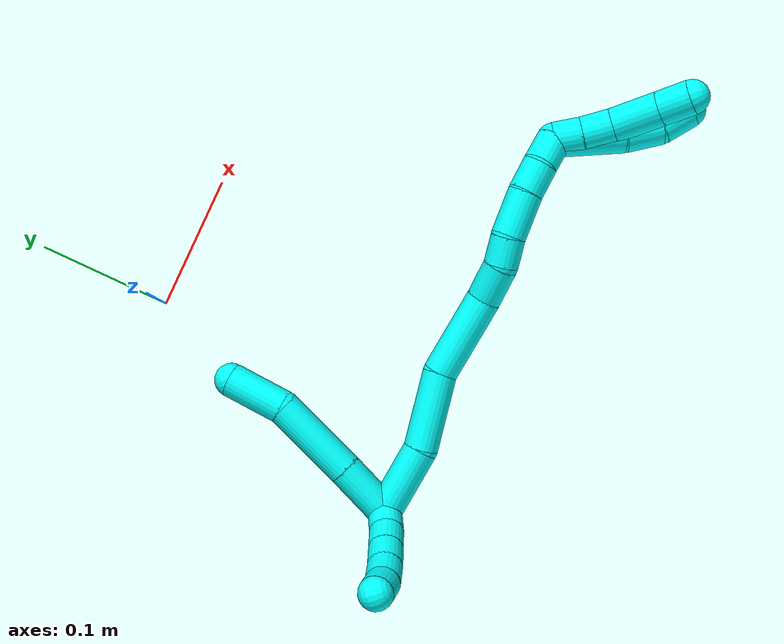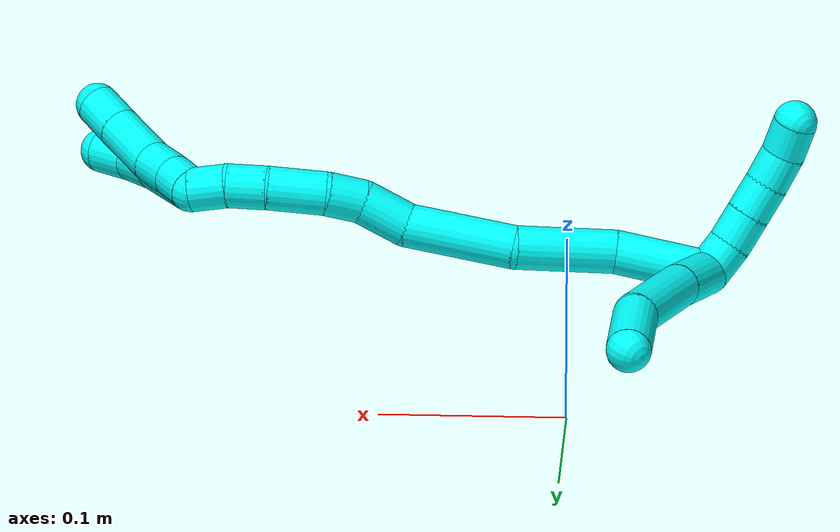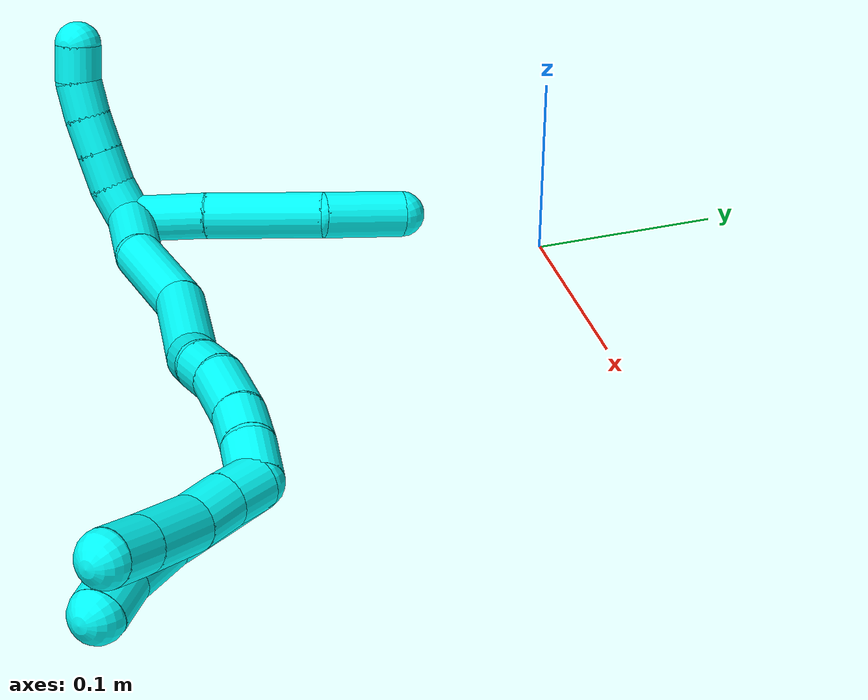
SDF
<sdf version="1.7">
 <world name="default">
  <model name="3">
   <static>0</static>
   <link name="3">
    <collision name="collision-cylinder-e_1_2_8">
     <pose>0.01212 0.015646 -0.008041 -2.04556 0.603287 -0.942823</pose>
     <geometry><cylinder><radius>0.0125</radius><length>0.042725</length></cylinder></geometry>
     <surface>
      <friction><ode><mu>1.16</mu><mu2>1.16</mu2><slip1>0</slip1><slip2>0</slip2></ode></friction>
      <contact><ode><kp>1e+06</kp><kd>1</kd><max_vel>0</max_vel><min_depth>0.001</min_depth></ode></contact>
     </surface>
    </collision>
    <visual name="visual-cylinder-e_1_2_8">
     <pose>0.01212 0.015646 -0.008041 -2.04556 0.603287 -0.942823</pose>
     <geometry><cylinder><radius>0.0125</radius><length>0.042725</length></cylinder></geometry>
     <material><ambient>0.003922 1 0.996078 1</ambient></material>
    </visual>
    <collision name="collision-cylinder-e_2_8_9">
     <pose>0.043127 0.053136 -0.02935 -2.11661 0.636431 -1.05935</pose>
     <geometry><cylinder><radius>0.0125</radius><length>0.063558</length></cylinder></geometry>
     <surface>
      <friction><ode><mu>1.16</mu><mu2>1.16</mu2><slip1>0</slip1><slip2>0</slip2></ode></friction>
      <contact><ode><kp>1e+06</kp><kd>1</kd><max_vel>0</max_vel><min_depth>0.001</min_depth></ode></contact>
     </surface>
    </collision>
    <visual name="visual-cylinder-e_2_8_9">
     <pose>0.043127 0.053136 -0.02935 -2.11661 0.636431 -1.05935</pose>
     <geometry><cylinder><radius>0.0125</radius><length>0.063558</length></cylinder></geometry>
     <material><ambient>0.003922 1 0.996078 1</ambient></material>
    </visual>
    <collision name="collision-cylinder-e_3_9_6">
     <pose>0.073513 0.085801 -0.057733 -2.52029 0.553948 -1.44948</pose>
     <geometry><cylinder><radius>0.0125</radius><length>0.043717</length></cylinder></geometry>
     <surface>
      <friction><ode><mu>1.16</mu><mu2>1.16</mu2><slip1>0</slip1><slip2>0</slip2></ode></friction>
      <contact><ode><kp>1e+06</kp><kd>1</kd><max_vel>0</max_vel><min_depth>0.001</min_depth></ode></contact>
     </surface>
    </collision>
    <visual name="visual-cylinder-e_3_9_6">
     <pose>0.073513 0.085801 -0.057733 -2.52029 0.553948 -1.44948</pose>
     <geometry><cylinder><radius>0.0125</radius><length>0.043717</length></cylinder></geometry>
     <material><ambient>0.003922 1 0.996078 1</ambient></material>
    </visual>
    <collision name="collision-cylinder-e_1_2_10">
     <pose>-0.009865 0.001625 0.000189 -1.4549 -1.4065 1.29323</pose>
     <geometry><cylinder><radius>0.0125</radius><length>0.02</length></cylinder></geometry>
     <surface>
      <friction><ode><mu>1.16</mu><mu2>1.16</mu2><slip1>0</slip1><slip2>0</slip2></ode></friction>
      <contact><ode><kp>1e+06</kp><kd>1</kd><max_vel>0</max_vel><min_depth>0.001</min_depth></ode></contact>
     </surface>
    </collision>
    <visual name="visual-cylinder-e_1_2_10">
     <pose>-0.009865 0.001625 0.000189 -1.4549 -1.4065 1.29323</pose>
     <geometry><cylinder><radius>0.0125</radius><length>0.02</length></cylinder></geometry>
     <material><ambient>0.003922 1 0.996078 1</ambient></material>
    </visual>
    <collision name="collision-cylinder-e_2_10_11">
     <pose>-0.029077 0.006803 0.000476 -1.5433 -1.20732 1.18174</pose>
     <geometry><cylinder><radius>0.0125</radius><length>0.02</length></cylinder></geometry>
     <surface>
      <friction><ode><mu>1.16</mu><mu2>1.16</mu2><slip1>0</slip1><slip2>0</slip2></ode></friction>
      <contact><ode><kp>1e+06</kp><kd>1</kd><max_vel>0</max_vel><min_depth>0.001</min_depth></ode></contact>
     </surface>
    </collision>
    <visual name="visual-cylinder-e_2_10_11">
     <pose>-0.029077 0.006803 0.000476 -1.5433 -1.20732 1.18174</pose>
     <geometry><cylinder><radius>0.0125</radius><length>0.02</length></cylinder></geometry>
     <material><ambient>0.003922 1 0.996078 1</ambient></material>
    </visual>
    <collision name="collision-cylinder-e_3_11_12">
     <pose>-0.047736 0.014003 0.000624 -1.5569 -1.19757 1.18467</pose>
     <geometry><cylinder><radius>0.0125</radius><length>0.02</length></cylinder></geometry>
     <surface>
      <friction><ode><mu>1.16</mu><mu2>1.16</mu2><slip1>0</slip1><slip2>0</slip2></ode></friction>
      <contact><ode><kp>1e+06</kp><kd>1</kd><max_vel>0</max_vel><min_depth>0.001</min_depth></ode></contact>
     </surface>
    </collision>
    <visual name="visual-cylinder-e_3_11_12">
     <pose>-0.047736 0.014003 0.000624 -1.5569 -1.19757 1.18467</pose>
     <geometry><cylinder><radius>0.0125</radius><length>0.02</length></cylinder></geometry>
     <material><ambient>0.003922 1 0.996078 1</ambient></material>
    </visual>
    <collision name="collision-cylinder-e_4_12_13">
     <pose>-0.065991 0.02212 0.000571 -1.59406 -1.10715 1.12807</pose>
     <geometry><cylinder><radius>0.0125</radius><length>0.02</length></cylinder></geometry>
     <surface>
      <friction><ode><mu>1.16</mu><mu2>1.16</mu2><slip1>0</slip1><slip2>0</slip2></ode></friction>
      <contact><ode><kp>1e+06</kp><kd>1</kd><max_vel>0</max_vel><min_depth>0.001</min_depth></ode></contact>
     </surface>
    </collision>
    <visual name="visual-cylinder-e_4_12_13">
     <pose>-0.065991 0.02212 0.000571 -1.59406 -1.10715 1.12807</pose>
     <geometry><cylinder><radius>0.0125</radius><length>0.02</length></cylinder></geometry>
     <material><ambient>0.003922 1 0.996078 1</ambient></material>
    </visual>
    <collision name="collision-cylinder-e_5_13_5">
     <pose>-0.08232 0.033308 -0.000124 -1.65853 -0.830709 0.897483</pose>
     <geometry><cylinder><radius>0.0125</radius><length>0.02</length></cylinder></geometry>
     <surface>
      <friction><ode><mu>1.16</mu><mu2>1.16</mu2><slip1>0</slip1><slip2>0</slip2></ode></friction>
      <contact><ode><kp>1e+06</kp><kd>1</kd><max_vel>0</max_vel><min_depth>0.001</min_depth></ode></contact>
     </surface>
    </collision>
    <visual name="visual-cylinder-e_5_13_5">
     <pose>-0.08232 0.033308 -0.000124 -1.65853 -0.830709 0.897483</pose>
     <geometry><cylinder><radius>0.0125</radius><length>0.02</length></cylinder></geometry>
     <material><ambient>0.003922 1 0.996078 1</ambient></material>
    </visual>
    <collision name="collision-cylinder-e_1_2_14">
     <pose>0.013644 0.010862 0.020173 -0.493922 0.53711 -0.13854</pose>
     <geometry><cylinder><radius>0.0125</radius><length>0.053332</length></cylinder></geometry>
     <surface>
      <friction><ode><mu>1.16</mu><mu2>1.16</mu2><slip1>0</slip1><slip2>0</slip2></ode></friction>
      <contact><ode><kp>1e+06</kp><kd>1</kd><max_vel>0</max_vel><min_depth>0.001</min_depth></ode></contact>
     </surface>
    </collision>
    <visual name="visual-cylinder-e_1_2_14">
     <pose>0.013644 0.010862 0.020173 -0.493922 0.53711 -0.13854</pose>
     <geometry><cylinder><radius>0.0125</radius><length>0.053332</length></cylinder></geometry>
     <material><ambient>0.003922 1 0.996078 1</ambient></material>
    </visual>
    <collision name="collision-cylinder-e_2_14_15">
     <pose>0.046858 0.035758 0.055944 -0.73267 0.75059 -0.300022</pose>
     <geometry><cylinder><radius>0.0125</radius><length>0.057386</length></cylinder></geometry>
     <surface>
      <friction><ode><mu>1.16</mu><mu2>1.16</mu2><slip1>0</slip1><slip2>0</slip2></ode></friction>
      <contact><ode><kp>1e+06</kp><kd>1</kd><max_vel>0</max_vel><min_depth>0.001</min_depth></ode></contact>
     </surface>
    </collision>
    <visual name="visual-cylinder-e_2_14_15">
     <pose>0.046858 0.035758 0.055944 -0.73267 0.75059 -0.300022</pose>
     <geometry><cylinder><radius>0.0125</radius><length>0.057386</length></cylinder></geometry>
     <material><ambient>0.003922 1 0.996078 1</ambient></material>
    </visual>
    <collision name="collision-cylinder-e_3_15_16">
     <pose>0.08266 0.06171 0.09534 -0.464267 0.547623 -0.132596</pose>
     <geometry><cylinder><radius>0.0125</radius><length>0.062347</length></cylinder></geometry>
     <surface>
      <friction><ode><mu>1.16</mu><mu2>1.16</mu2><slip1>0</slip1><slip2>0</slip2></ode></friction>
      <contact><ode><kp>1e+06</kp><kd>1</kd><max_vel>0</max_vel><min_depth>0.001</min_depth></ode></contact>
     </surface>
    </collision>
    <visual name="visual-cylinder-e_3_15_16">
     <pose>0.08266 0.06171 0.09534 -0.464267 0.547623 -0.132596</pose>
     <geometry><cylinder><radius>0.0125</radius><length>0.062347</length></cylinder></geometry>
     <material><ambient>0.003922 1 0.996078 1</ambient></material>
    </visual>
    <collision name="collision-cylinder-e_4_16_17">
     <pose>0.10315 0.082584 0.12941 -0.717082 0.302918 -0.114267</pose>
     <geometry><cylinder><radius>0.0125</radius><length>0.028556</length></cylinder></geometry>
     <surface>
      <friction><ode><mu>1.16</mu><mu2>1.16</mu2><slip1>0</slip1><slip2>0</slip2></ode></friction>
      <contact><ode><kp>1e+06</kp><kd>1</kd><max_vel>0</max_vel><min_depth>0.001</min_depth></ode></contact>
     </surface>
    </collision>
    <visual name="visual-cylinder-e_4_16_17">
     <pose>0.10315 0.082584 0.12941 -0.717082 0.302918 -0.114267</pose>
     <geometry><cylinder><radius>0.0125</radius><length>0.028556</length></cylinder></geometry>
     <material><ambient>0.003922 1 0.996078 1</ambient></material>
    </visual>
    <collision name="collision-cylinder-e_5_17_18">
     <pose>0.113343 0.098099 0.145695 -0.828796 0.588152 -0.264876</pose>
     <geometry><cylinder><radius>0.0125</radius><length>0.02139</length></cylinder></geometry>
     <surface>
      <friction><ode><mu>1.16</mu><mu2>1.16</mu2><slip1>0</slip1><slip2>0</slip2></ode></friction>
      <contact><ode><kp>1e+06</kp><kd>1</kd><max_vel>0</max_vel><min_depth>0.001</min_depth></ode></contact>
     </surface>
    </collision>
    <visual name="visual-cylinder-e_5_17_18">
     <pose>0.113343 0.098099 0.145695 -0.828796 0.588152 -0.264876</pose>
     <geometry><cylinder><radius>0.0125</radius><length>0.02139</length></cylinder></geometry>
     <material><ambient>0.003922 1 0.996078 1</ambient></material>
    </visual>
    <collision name="collision-cylinder-e_6_18_19">
     <pose>0.129709 0.111836 0.162379 -0.592132 0.68151 -0.215482</pose>
     <geometry><cylinder><radius>0.0125</radius><length>0.03312</length></cylinder></geometry>
     <surface>
      <friction><ode><mu>1.16</mu><mu2>1.16</mu2><slip1>0</slip1><slip2>0</slip2></ode></friction>
      <contact><ode><kp>1e+06</kp><kd>1</kd><max_vel>0</max_vel><min_depth>0.001</min_depth></ode></contact>
     </surface>
    </collision>
    <visual name="visual-cylinder-e_6_18_19">
     <pose>0.129709 0.111836 0.162379 -0.592132 0.68151 -0.215482</pose>
     <geometry><cylinder><radius>0.0125</radius><length>0.03312</length></cylinder></geometry>
     <material><ambient>0.003922 1 0.996078 1</ambient></material>
    </visual>
    <collision name="collision-cylinder-e_7_19_20">
     <pose>0.147324 0.122563 0.181036 -0.418217 0.687925 -0.151736</pose>
     <geometry><cylinder><radius>0.0125</radius><length>0.022624</length></cylinder></geometry>
     <surface>
      <friction><ode><mu>1.16</mu><mu2>1.16</mu2><slip1>0</slip1><slip2>0</slip2></ode></friction>
      <contact><ode><kp>1e+06</kp><kd>1</kd><max_vel>0</max_vel><min_depth>0.001</min_depth></ode></contact>
     </surface>
    </collision>
    <visual name="visual-cylinder-e_7_19_20">
     <pose>0.147324 0.122563 0.181036 -0.418217 0.687925 -0.151736</pose>
     <geometry><cylinder><radius>0.0125</radius><length>0.022624</length></cylinder></geometry>
     <material><ambient>0.003922 1 0.996078 1</ambient></material>
    </visual>
    <collision name="collision-cylinder-e_8_20_1">
     <pose>0.162203 0.127709 0.196166 -0.219884 0.810496 -0.09464</pose>
     <geometry><cylinder><radius>0.0125</radius><length>0.021244</length></cylinder></geometry>
     <surface>
      <friction><ode><mu>1.16</mu><mu2>1.16</mu2><slip1>0</slip1><slip2>0</slip2></ode></friction>
      <contact><ode><kp>1e+06</kp><kd>1</kd><max_vel>0</max_vel><min_depth>0.001</min_depth></ode></contact>
     </surface>
    </collision>
    <visual name="visual-cylinder-e_8_20_1">
     <pose>0.162203 0.127709 0.196166 -0.219884 0.810496 -0.09464</pose>
     <geometry><cylinder><radius>0.0125</radius><length>0.021244</length></cylinder></geometry>
     <material><ambient>0.003922 1 0.996078 1</ambient></material>
    </visual>
    <collision name="collision-cylinder-e_1_1_21">
     <pose>0.16943 0.127387 0.213152 0.192494 -0.046858 -0.004525</pose>
     <geometry><cylinder><radius>0.0125</radius><length>0.020077</length></cylinder></geometry>
     <surface>
      <friction><ode><mu>1.16</mu><mu2>1.16</mu2><slip1>0</slip1><slip2>0</slip2></ode></friction>
      <contact><ode><kp>1e+06</kp><kd>1</kd><max_vel>0</max_vel><min_depth>0.001</min_depth></ode></contact>
     </surface>
    </collision>
    <visual name="visual-cylinder-e_1_1_21">
     <pose>0.16943 0.127387 0.213152 0.192494 -0.046858 -0.004525</pose>
     <geometry><cylinder><radius>0.0125</radius><length>0.020077</length></cylinder></geometry>
     <material><ambient>0.003922 1 0.996078 1</ambient></material>
    </visual>
    <collision name="collision-cylinder-e_2_21_22">
     <pose>0.169139 0.124006 0.234057 0.131493 0.016087 0.001059</pose>
     <geometry><cylinder><radius>0.0125</radius><length>0.022321</length></cylinder></geometry>
     <surface>
      <friction><ode><mu>1.16</mu><mu2>1.16</mu2><slip1>0</slip1><slip2>0</slip2></ode></friction>
      <contact><ode><kp>1e+06</kp><kd>1</kd><max_vel>0</max_vel><min_depth>0.001</min_depth></ode></contact>
     </surface>
    </collision>
    <visual name="visual-cylinder-e_2_21_22">
     <pose>0.169139 0.124006 0.234057 0.131493 0.016087 0.001059</pose>
     <geometry><cylinder><radius>0.0125</radius><length>0.022321</length></cylinder></geometry>
     <material><ambient>0.003922 1 0.996078 1</ambient></material>
    </visual>
    <collision name="collision-cylinder-e_3_22_23">
     <pose>0.167737 0.123788 0.262273 -0.072498 -0.091727 0.003329</pose>
     <geometry><cylinder><radius>0.0125</radius><length>0.034542</length></cylinder></geometry>
     <surface>
      <friction><ode><mu>1.16</mu><mu2>1.16</mu2><slip1>0</slip1><slip2>0</slip2></ode></friction>
      <contact><ode><kp>1e+06</kp><kd>1</kd><max_vel>0</max_vel><min_depth>0.001</min_depth></ode></contact>
     </surface>
    </collision>
    <visual name="visual-cylinder-e_3_22_23">
     <pose>0.167737 0.123788 0.262273 -0.072498 -0.091727 0.003329</pose>
     <geometry><cylinder><radius>0.0125</radius><length>0.034542</length></cylinder></geometry>
     <material><ambient>0.003922 1 0.996078 1</ambient></material>
    </visual>
    <collision name="collision-cylinder-e_4_23_4">
     <pose>0.164897 0.126157 0.290832 -0.098147 -0.10929 0.005373</pose>
     <geometry><cylinder><radius>0.0125</radius><length>0.02306</length></cylinder></geometry>
     <surface>
      <friction><ode><mu>1.16</mu><mu2>1.16</mu2><slip1>0</slip1><slip2>0</slip2></ode></friction>
      <contact><ode><kp>1e+06</kp><kd>1</kd><max_vel>0</max_vel><min_depth>0.001</min_depth></ode></contact>
     </surface>
    </collision>
    <visual name="visual-cylinder-e_4_23_4">
     <pose>0.164897 0.126157 0.290832 -0.098147 -0.10929 0.005373</pose>
     <geometry><cylinder><radius>0.0125</radius><length>0.02306</length></cylinder></geometry>
     <material><ambient>0.003922 1 0.996078 1</ambient></material>
    </visual>
    <collision name="collision-cylinder-e_1_1_24">
     <pose>0.169362 0.119895 0.226394 0.387078 -0.02158 -0.00423</pose>
     <geometry><cylinder><radius>0.0125</radius><length>0.049868</length></cylinder></geometry>
     <surface>
      <friction><ode><mu>1.16</mu><mu2>1.16</mu2><slip1>0</slip1><slip2>0</slip2></ode></friction>
      <contact><ode><kp>1e+06</kp><kd>1</kd><max_vel>0</max_vel><min_depth>0.001</min_depth></ode></contact>
     </surface>
    </collision>
    <visual name="visual-cylinder-e_1_1_24">
     <pose>0.169362 0.119895 0.226394 0.387078 -0.02158 -0.00423</pose>
     <geometry><cylinder><radius>0.0125</radius><length>0.049868</length></cylinder></geometry>
     <material><ambient>0.003922 1 0.996078 1</ambient></material>
    </visual>
    <collision name="collision-cylinder-e_2_24_25">
     <pose>0.170185 0.106745 0.262144 0.287184 0.102654 0.014855</pose>
     <geometry><cylinder><radius>0.0125</radius><length>0.026554</length></cylinder></geometry>
     <surface>
      <friction><ode><mu>1.16</mu><mu2>1.16</mu2><slip1>0</slip1><slip2>0</slip2></ode></friction>
      <contact><ode><kp>1e+06</kp><kd>1</kd><max_vel>0</max_vel><min_depth>0.001</min_depth></ode></contact>
     </surface>
    </collision>
    <visual name="visual-cylinder-e_2_24_25">
     <pose>0.170185 0.106745 0.262144 0.287184 0.102654 0.014855</pose>
     <geometry><cylinder><radius>0.0125</radius><length>0.026554</length></cylinder></geometry>
     <material><ambient>0.003922 1 0.996078 1</ambient></material>
    </visual>
    <collision name="collision-cylinder-e_3_25_3">
     <pose>0.174955 0.102559 0.286087 0.039421 0.293385 0.005825</pose>
     <geometry><cylinder><radius>0.0125</radius><length>0.023578</length></cylinder></geometry>
     <surface>
      <friction><ode><mu>1.16</mu><mu2>1.16</mu2><slip1>0</slip1><slip2>0</slip2></ode></friction>
      <contact><ode><kp>1e+06</kp><kd>1</kd><max_vel>0</max_vel><min_depth>0.001</min_depth></ode></contact>
     </surface>
    </collision>
    <visual name="visual-cylinder-e_3_25_3">
     <pose>0.174955 0.102559 0.286087 0.039421 0.293385 0.005825</pose>
     <geometry><cylinder><radius>0.0125</radius><length>0.023578</length></cylinder></geometry>
     <material><ambient>0.003922 1 0.996078 1</ambient></material>
    </visual>
    <collision name="collision-sphere-3">
     <pose>0.178364 0.102114 0.297363 0 -0 0</pose>
     <geometry><sphere><radius>0.0125</radius></sphere></geometry>
     <surface>
      <friction><ode><mu>1.16</mu><mu2>1.16</mu2><slip1>0</slip1><slip2>0</slip2></ode></friction>
      <contact><ode><kp>1e+06</kp><kd>1</kd><max_vel>0</max_vel><min_depth>0.001</min_depth></ode></contact>
     </surface>
    </collision>
    <visual name="visual-sphere-3">
     <pose>0.178364 0.102114 0.297363 0 -0 0</pose>
     <geometry><sphere><radius>0.0125</radius></sphere></geometry>
     <material><ambient>0.003922 1 0.996078 1</ambient></material>
    </visual>
    <collision name="collision-sphere-25">
     <pose>0.171545 0.103004 0.27481 0 -0 0</pose>
     <geometry><sphere><radius>0.0125</radius></sphere></geometry>
     <surface>
      <friction><ode><mu>1.16</mu><mu2>1.16</mu2><slip1>0</slip1><slip2>0</slip2></ode></friction>
      <contact><ode><kp>1e+06</kp><kd>1</kd><max_vel>0</max_vel><min_depth>0.001</min_depth></ode></contact>
     </surface>
    </collision>
    <visual name="visual-sphere-25">
     <pose>0.171545 0.103004 0.27481 0 -0 0</pose>
     <geometry><sphere><radius>0.0125</radius></sphere></geometry>
     <material><ambient>0.003922 1 0.996078 1</ambient></material>
    </visual>
    <collision name="collision-sphere-24">
     <pose>0.168824 0.110486 0.249478 0 -0 0</pose>
     <geometry><sphere><radius>0.0125</radius></sphere></geometry>
     <surface>
      <friction><ode><mu>1.16</mu><mu2>1.16</mu2><slip1>0</slip1><slip2>0</slip2></ode></friction>
      <contact><ode><kp>1e+06</kp><kd>1</kd><max_vel>0</max_vel><min_depth>0.001</min_depth></ode></contact>
     </surface>
    </collision>
    <visual name="visual-sphere-24">
     <pose>0.168824 0.110486 0.249478 0 -0 0</pose>
     <geometry><sphere><radius>0.0125</radius></sphere></geometry>
     <material><ambient>0.003922 1 0.996078 1</ambient></material>
    </visual>
    <collision name="collision-sphere-4">
     <pose>0.16364 0.12728 0.302239 0 -0 0</pose>
     <geometry><sphere><radius>0.0125</radius></sphere></geometry>
     <surface>
      <friction><ode><mu>1.16</mu><mu2>1.16</mu2><slip1>0</slip1><slip2>0</slip2></ode></friction>
      <contact><ode><kp>1e+06</kp><kd>1</kd><max_vel>0</max_vel><min_depth>0.001</min_depth></ode></contact>
     </surface>
    </collision>
    <visual name="visual-sphere-4">
     <pose>0.16364 0.12728 0.302239 0 -0 0</pose>
     <geometry><sphere><radius>0.0125</radius></sphere></geometry>
     <material><ambient>0.003922 1 0.996078 1</ambient></material>
    </visual>
    <collision name="collision-sphere-23">
     <pose>0.166155 0.125034 0.279426 0 -0 0</pose>
     <geometry><sphere><radius>0.0125</radius></sphere></geometry>
     <surface>
      <friction><ode><mu>1.16</mu><mu2>1.16</mu2><slip1>0</slip1><slip2>0</slip2></ode></friction>
      <contact><ode><kp>1e+06</kp><kd>1</kd><max_vel>0</max_vel><min_depth>0.001</min_depth></ode></contact>
     </surface>
    </collision>
    <visual name="visual-sphere-23">
     <pose>0.166155 0.125034 0.279426 0 -0 0</pose>
     <geometry><sphere><radius>0.0125</radius></sphere></geometry>
     <material><ambient>0.003922 1 0.996078 1</ambient></material>
    </visual>
    <collision name="collision-sphere-22">
     <pose>0.169319 0.122543 0.24512 0 -0 0</pose>
     <geometry><sphere><radius>0.0125</radius></sphere></geometry>
     <surface>
      <friction><ode><mu>1.16</mu><mu2>1.16</mu2><slip1>0</slip1><slip2>0</slip2></ode></friction>
      <contact><ode><kp>1e+06</kp><kd>1</kd><max_vel>0</max_vel><min_depth>0.001</min_depth></ode></contact>
     </surface>
    </collision>
    <visual name="visual-sphere-22">
     <pose>0.169319 0.122543 0.24512 0 -0 0</pose>
     <geometry><sphere><radius>0.0125</radius></sphere></geometry>
     <material><ambient>0.003922 1 0.996078 1</ambient></material>
    </visual>
    <collision name="collision-sphere-21">
     <pose>0.16896 0.125469 0.222995 0 -0 0</pose>
     <geometry><sphere><radius>0.0125</radius></sphere></geometry>
     <surface>
      <friction><ode><mu>1.16</mu><mu2>1.16</mu2><slip1>0</slip1><slip2>0</slip2></ode></friction>
      <contact><ode><kp>1e+06</kp><kd>1</kd><max_vel>0</max_vel><min_depth>0.001</min_depth></ode></contact>
     </surface>
    </collision>
    <visual name="visual-sphere-21">
     <pose>0.16896 0.125469 0.222995 0 -0 0</pose>
     <geometry><sphere><radius>0.0125</radius></sphere></geometry>
     <material><ambient>0.003922 1 0.996078 1</ambient></material>
    </visual>
    <collision name="collision-sphere-1">
     <pose>0.1699 0.129305 0.20331 0 -0 0</pose>
     <geometry><sphere><radius>0.0125</radius></sphere></geometry>
     <surface>
      <friction><ode><mu>1.16</mu><mu2>1.16</mu2><slip1>0</slip1><slip2>0</slip2></ode></friction>
      <contact><ode><kp>1e+06</kp><kd>1</kd><max_vel>0</max_vel><min_depth>0.001</min_depth></ode></contact>
     </surface>
    </collision>
    <visual name="visual-sphere-1">
     <pose>0.1699 0.129305 0.20331 0 -0 0</pose>
     <geometry><sphere><radius>0.0125</radius></sphere></geometry>
     <material><ambient>0.003922 1 0.996078 1</ambient></material>
    </visual>
    <collision name="collision-sphere-11">
     <pose>-0.038424 0.010357 0.000574 0 -0 0</pose>
     <geometry><sphere><radius>0.0125</radius></sphere></geometry>
     <surface>
      <friction><ode><mu>1.16</mu><mu2>1.16</mu2><slip1>0</slip1><slip2>0</slip2></ode></friction>
      <contact><ode><kp>1e+06</kp><kd>1</kd><max_vel>0</max_vel><min_depth>0.001</min_depth></ode></contact>
     </surface>
    </collision>
    <visual name="visual-sphere-11">
     <pose>-0.038424 0.010357 0.000574 0 -0 0</pose>
     <geometry><sphere><radius>0.0125</radius></sphere></geometry>
     <material><ambient>0.003922 1 0.996078 1</ambient></material>
    </visual>
    <collision name="collision-sphere-10">
     <pose>-0.019731 0.003249 0.000378 0 -0 0</pose>
     <geometry><sphere><radius>0.0125</radius></sphere></geometry>
     <surface>
      <friction><ode><mu>1.16</mu><mu2>1.16</mu2><slip1>0</slip1><slip2>0</slip2></ode></friction>
      <contact><ode><kp>1e+06</kp><kd>1</kd><max_vel>0</max_vel><min_depth>0.001</min_depth></ode></contact>
     </surface>
    </collision>
    <visual name="visual-sphere-10">
     <pose>-0.019731 0.003249 0.000378 0 -0 0</pose>
     <geometry><sphere><radius>0.0125</radius></sphere></geometry>
     <material><ambient>0.003922 1 0.996078 1</ambient></material>
    </visual>
    <collision name="collision-sphere-6">
     <pose>0.085012 0.096622 -0.072849 0 -0 0</pose>
     <geometry><sphere><radius>0.0125</radius></sphere></geometry>
     <surface>
      <friction><ode><mu>1.16</mu><mu2>1.16</mu2><slip1>0</slip1><slip2>0</slip2></ode></friction>
      <contact><ode><kp>1e+06</kp><kd>1</kd><max_vel>0</max_vel><min_depth>0.001</min_depth></ode></contact>
     </surface>
    </collision>
    <visual name="visual-sphere-6">
     <pose>0.085012 0.096622 -0.072849 0 -0 0</pose>
     <geometry><sphere><radius>0.0125</radius></sphere></geometry>
     <material><ambient>0.003922 1 0.996078 1</ambient></material>
    </visual>
    <collision name="collision-sphere-9">
     <pose>0.062015 0.07498 -0.042618 0 -0 0</pose>
     <geometry><sphere><radius>0.0125</radius></sphere></geometry>
     <surface>
      <friction><ode><mu>1.16</mu><mu2>1.16</mu2><slip1>0</slip1><slip2>0</slip2></ode></friction>
      <contact><ode><kp>1e+06</kp><kd>1</kd><max_vel>0</max_vel><min_depth>0.001</min_depth></ode></contact>
     </surface>
    </collision>
    <visual name="visual-sphere-9">
     <pose>0.062015 0.07498 -0.042618 0 -0 0</pose>
     <geometry><sphere><radius>0.0125</radius></sphere></geometry>
     <material><ambient>0.003922 1 0.996078 1</ambient></material>
    </visual>
    <collision name="collision-sphere-2">
     <geometry><sphere><radius>0.0125</radius></sphere></geometry>
     <surface>
      <friction><ode><mu>1.16</mu><mu2>1.16</mu2><slip1>0</slip1><slip2>0</slip2></ode></friction>
      <contact><ode><kp>1e+06</kp><kd>1</kd><max_vel>0</max_vel><min_depth>0.001</min_depth></ode></contact>
     </surface>
    </collision>
    <visual name="visual-sphere-2">
     <geometry><sphere><radius>0.0125</radius></sphere></geometry>
     <material><ambient>0.003922 1 0.996078 1</ambient></material>
    </visual>
    <collision name="collision-sphere-19">
     <pose>0.140142 0.119014 0.17305 0 -0 0</pose>
     <geometry><sphere><radius>0.0125</radius></sphere></geometry>
     <surface>
      <friction><ode><mu>1.16</mu><mu2>1.16</mu2><slip1>0</slip1><slip2>0</slip2></ode></friction>
      <contact><ode><kp>1e+06</kp><kd>1</kd><max_vel>0</max_vel><min_depth>0.001</min_depth></ode></contact>
     </surface>
    </collision>
    <visual name="visual-sphere-19">
     <pose>0.140142 0.119014 0.17305 0 -0 0</pose>
     <geometry><sphere><radius>0.0125</radius></sphere></geometry>
     <material><ambient>0.003922 1 0.996078 1</ambient></material>
    </visual>
    <collision name="collision-sphere-8">
     <pose>0.02424 0.031292 -0.016083 0 -0 0</pose>
     <geometry><sphere><radius>0.0125</radius></sphere></geometry>
     <surface>
      <friction><ode><mu>1.16</mu><mu2>1.16</mu2><slip1>0</slip1><slip2>0</slip2></ode></friction>
      <contact><ode><kp>1e+06</kp><kd>1</kd><max_vel>0</max_vel><min_depth>0.001</min_depth></ode></contact>
     </surface>
    </collision>
    <visual name="visual-sphere-8">
     <pose>0.02424 0.031292 -0.016083 0 -0 0</pose>
     <geometry><sphere><radius>0.0125</radius></sphere></geometry>
     <material><ambient>0.003922 1 0.996078 1</ambient></material>
    </visual>
    <collision name="collision-sphere-12">
     <pose>-0.057047 0.017649 0.000675 0 -0 0</pose>
     <geometry><sphere><radius>0.0125</radius></sphere></geometry>
     <surface>
      <friction><ode><mu>1.16</mu><mu2>1.16</mu2><slip1>0</slip1><slip2>0</slip2></ode></friction>
      <contact><ode><kp>1e+06</kp><kd>1</kd><max_vel>0</max_vel><min_depth>0.001</min_depth></ode></contact>
     </surface>
    </collision>
    <visual name="visual-sphere-12">
     <pose>-0.057047 0.017649 0.000675 0 -0 0</pose>
     <geometry><sphere><radius>0.0125</radius></sphere></geometry>
     <material><ambient>0.003922 1 0.996078 1</ambient></material>
    </visual>
    <collision name="collision-sphere-13">
     <pose>-0.074936 0.02659 0.000467 0 -0 0</pose>
     <geometry><sphere><radius>0.0125</radius></sphere></geometry>
     <surface>
      <friction><ode><mu>1.16</mu><mu2>1.16</mu2><slip1>0</slip1><slip2>0</slip2></ode></friction>
      <contact><ode><kp>1e+06</kp><kd>1</kd><max_vel>0</max_vel><min_depth>0.001</min_depth></ode></contact>
     </surface>
    </collision>
    <visual name="visual-sphere-13">
     <pose>-0.074936 0.02659 0.000467 0 -0 0</pose>
     <geometry><sphere><radius>0.0125</radius></sphere></geometry>
     <material><ambient>0.003922 1 0.996078 1</ambient></material>
    </visual>
    <collision name="collision-sphere-5">
     <pose>-0.089704 0.040026 -0.000715 0 -0 0</pose>
     <geometry><sphere><radius>0.0125</radius></sphere></geometry>
     <surface>
      <friction><ode><mu>1.16</mu><mu2>1.16</mu2><slip1>0</slip1><slip2>0</slip2></ode></friction>
      <contact><ode><kp>1e+06</kp><kd>1</kd><max_vel>0</max_vel><min_depth>0.001</min_depth></ode></contact>
     </surface>
    </collision>
    <visual name="visual-sphere-5">
     <pose>-0.089704 0.040026 -0.000715 0 -0 0</pose>
     <geometry><sphere><radius>0.0125</radius></sphere></geometry>
     <material><ambient>0.003922 1 0.996078 1</ambient></material>
    </visual>
    <collision name="collision-sphere-14">
     <pose>0.027288 0.021724 0.040346 0 -0 0</pose>
     <geometry><sphere><radius>0.0125</radius></sphere></geometry>
     <surface>
      <friction><ode><mu>1.16</mu><mu2>1.16</mu2><slip1>0</slip1><slip2>0</slip2></ode></friction>
      <contact><ode><kp>1e+06</kp><kd>1</kd><max_vel>0</max_vel><min_depth>0.001</min_depth></ode></contact>
     </surface>
    </collision>
    <visual name="visual-sphere-14">
     <pose>0.027288 0.021724 0.040346 0 -0 0</pose>
     <geometry><sphere><radius>0.0125</radius></sphere></geometry>
     <material><ambient>0.003922 1 0.996078 1</ambient></material>
    </visual>
    <collision name="collision-sphere-15">
     <pose>0.066429 0.049793 0.071543 0 -0 0</pose>
     <geometry><sphere><radius>0.0125</radius></sphere></geometry>
     <surface>
      <friction><ode><mu>1.16</mu><mu2>1.16</mu2><slip1>0</slip1><slip2>0</slip2></ode></friction>
      <contact><ode><kp>1e+06</kp><kd>1</kd><max_vel>0</max_vel><min_depth>0.001</min_depth></ode></contact>
     </surface>
    </collision>
    <visual name="visual-sphere-15">
     <pose>0.066429 0.049793 0.071543 0 -0 0</pose>
     <geometry><sphere><radius>0.0125</radius></sphere></geometry>
     <material><ambient>0.003922 1 0.996078 1</ambient></material>
    </visual>
    <collision name="collision-sphere-16">
     <pose>0.098891 0.073627 0.119138 0 -0 0</pose>
     <geometry><sphere><radius>0.0125</radius></sphere></geometry>
     <surface>
      <friction><ode><mu>1.16</mu><mu2>1.16</mu2><slip1>0</slip1><slip2>0</slip2></ode></friction>
      <contact><ode><kp>1e+06</kp><kd>1</kd><max_vel>0</max_vel><min_depth>0.001</min_depth></ode></contact>
     </surface>
    </collision>
    <visual name="visual-sphere-16">
     <pose>0.098891 0.073627 0.119138 0 -0 0</pose>
     <geometry><sphere><radius>0.0125</radius></sphere></geometry>
     <material><ambient>0.003922 1 0.996078 1</ambient></material>
    </visual>
    <collision name="collision-sphere-17">
     <pose>0.107409 0.09154 0.139682 0 -0 0</pose>
     <geometry><sphere><radius>0.0125</radius></sphere></geometry>
     <surface>
      <friction><ode><mu>1.16</mu><mu2>1.16</mu2><slip1>0</slip1><slip2>0</slip2></ode></friction>
      <contact><ode><kp>1e+06</kp><kd>1</kd><max_vel>0</max_vel><min_depth>0.001</min_depth></ode></contact>
     </surface>
    </collision>
    <visual name="visual-sphere-17">
     <pose>0.107409 0.09154 0.139682 0 -0 0</pose>
     <geometry><sphere><radius>0.0125</radius></sphere></geometry>
     <material><ambient>0.003922 1 0.996078 1</ambient></material>
    </visual>
    <collision name="collision-sphere-18">
     <pose>0.119277 0.104658 0.151708 0 -0 0</pose>
     <geometry><sphere><radius>0.0125</radius></sphere></geometry>
     <surface>
      <friction><ode><mu>1.16</mu><mu2>1.16</mu2><slip1>0</slip1><slip2>0</slip2></ode></friction>
      <contact><ode><kp>1e+06</kp><kd>1</kd><max_vel>0</max_vel><min_depth>0.001</min_depth></ode></contact>
     </surface>
    </collision>
    <visual name="visual-sphere-18">
     <pose>0.119277 0.104658 0.151708 0 -0 0</pose>
     <geometry><sphere><radius>0.0125</radius></sphere></geometry>
     <material><ambient>0.003922 1 0.996078 1</ambient></material>
    </visual>
    <collision name="collision-sphere-20">
     <pose>0.154506 0.126112 0.189022 0 -0 0</pose>
     <geometry><sphere><radius>0.0125</radius></sphere></geometry>
     <surface>
      <friction><ode><mu>1.16</mu><mu2>1.16</mu2><slip1>0</slip1><slip2>0</slip2></ode></friction>
      <contact><ode><kp>1e+06</kp><kd>1</kd><max_vel>0</max_vel><min_depth>0.001</min_depth></ode></contact>
     </surface>
    </collision>
    <visual name="visual-sphere-20">
     <pose>0.154506 0.126112 0.189022 0 -0 0</pose>
     <geometry><sphere><radius>0.0125</radius></sphere></geometry>
     <material><ambient>0.003922 1 0.996078 1</ambient></material>
    </visual>
    <inertial>
     <pose>0.080869 0.070962 0.101668 0 -0 0</pose>
     <mass>0.75</mass>
     <inertia><ixx>7.3e-05</ixx><ixy>0</ixy><ixz>0</ixz><iyy>8.1e-05</iyy><iyz>0</iyz><izz>-8.3e-05</izz></inertia>
    </inertial>
   </link>
   <pose>-0.07117 -0.211852 0.013474 1.24501 0.66057 0.553289</pose>
  </model>
 </world>
</sdf>
